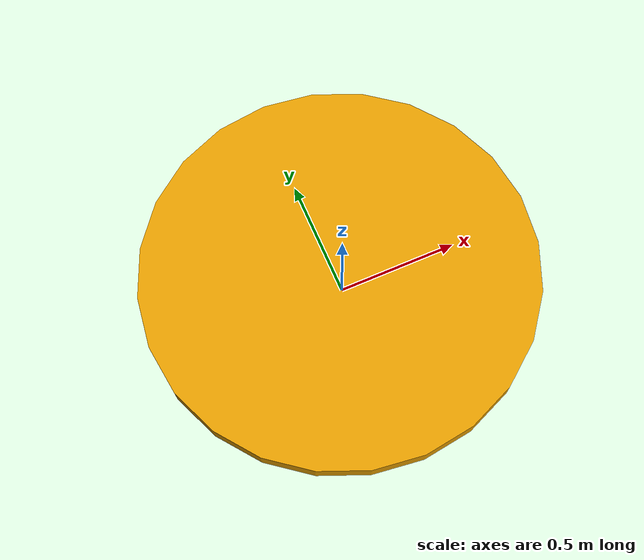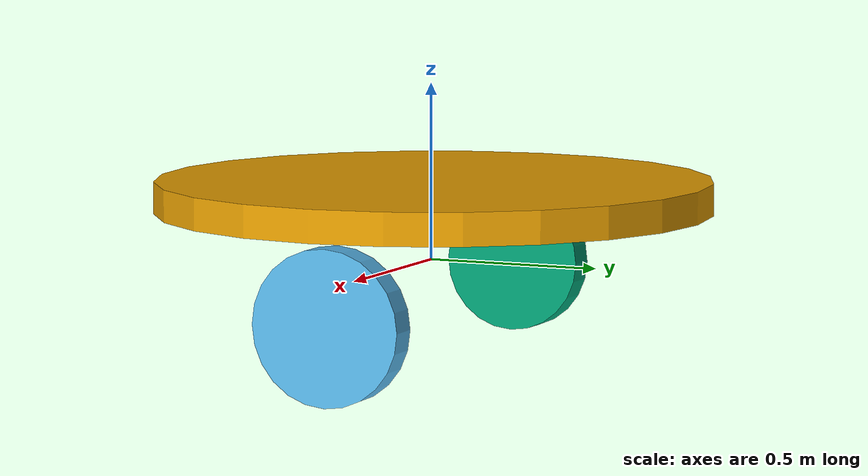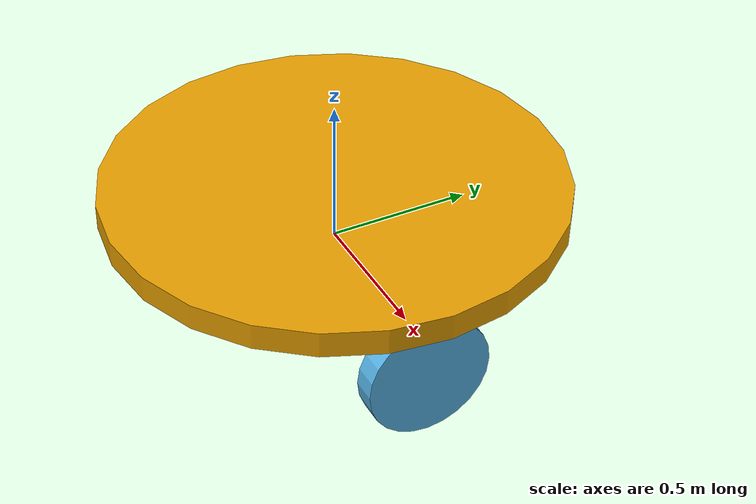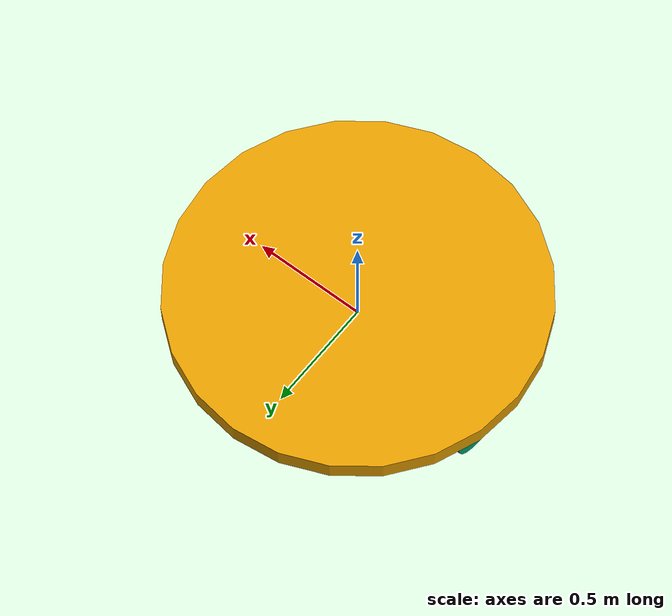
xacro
<?xml version="1.0" ?>
<robot name="bfl_2" xmlns:xacro="http://ros.org/wiki/xacro">

  <xacro:include filename="$(find dharmendra_model)/gazebo/bfl_2_materials.gazebo" />
  <xacro:include filename="$(find dharmendra_model)/gazebo/bfl_2_physics.gazebo" />
  <xacro:include filename="$(find dharmendra_model)/gazebo/bfl_2_plugins.gazebo" />

  <joint name="bfl_2__link_1_JOINT_0" type="revolute">
    <parent link="bfl_2__link_1"/>
    <child link="bfl_2__link_2"/>
    <origin xyz="0.63409 -0.00408 -0.1042" rpy="0      -1.56933  0"/>
    <axis xyz="0 0 1"/>
    <limit lower="-1.79769e+308" upper="1.79769e+308" effort="-1.0" velocity="-1.0"/>
  </joint>
  <joint name="bfl_2__link_1_JOINT_1" type="revolute">
    <parent link="bfl_2__link_1"/>
    <child link="bfl_2__link_3"/>
    <origin xyz="-0.62708 -0.00129 -0.07814" rpy="0      1.54813 0"/>
    <axis xyz="0 0 1"/>
    <limit lower="-1.79769e+308" upper="1.79769e+308" effort="-1.0" velocity="-1.0"/>
  </joint>
  <link name="bfl_2__link_1">
    <inertial>
      <mass value="0.225868"/>
      <origin xyz="0 0 0" rpy="0 0 0"/>
      <inertia ixx="0.0354084" ixy="0" ixz="0" iyy="0.0354084" iyz="0" izz="0.0705088"/>
    </inertial>
    <collision name="bfl_2__collision">
      <origin xyz="-0.00701  0.00537  0.18234" rpy="0 0 0"/>
      <geometry>
        <cylinder radius="0.79015" length="0.090441"/>
      </geometry>
    </collision>
    <visual name="bfl_2__visual">
      <origin xyz="-0.00701  0.00537  0.18234" rpy="0 0 0"/>
      <geometry>
        <cylinder radius="0.79015" length="0.0904415"/>
      </geometry>
    </visual>
  </link>
  <link name="bfl_2__link_2">
    <inertial>
      <mass value="0.0152714"/>
      <origin xyz="0 0 0" rpy="0 0 0"/>
      <inertia ixx="0.000183382" ixy="0" ixz="0" iyy="0.000183382" iyz="0" izz="0.000348998"/>
    </inertial>
    <collision name="bfl_2__collision">
      <origin xyz="0 0 0" rpy="0 0 0"/>
      <geometry>
        <cylinder radius="0.21379" length="0.083545"/>
      </geometry>
    </collision>
    <visual name="bfl_2__visual">
      <origin xyz="0 0 0" rpy="0 0 0"/>
      <geometry>
        <cylinder radius="0.21379" length="0.0835446"/>
      </geometry>
    </visual>
  </link>
  <link name="bfl_2__link_3">
    <inertial>
      <mass value="0.0159258"/>
      <origin xyz="0 0 0" rpy="0 0 0"/>
      <inertia ixx="0.000182628" ixy="0" ixz="0" iyy="0.000182628" iyz="0" izz="0.00034253"/>
    </inertial>
    <collision name="bfl_2__collision">
      <origin xyz="0 0 0" rpy="0 0 0"/>
      <geometry>
        <cylinder radius="0.207402" length="0.09253"/>
      </geometry>
    </collision>
    <visual name="bfl_2__visual">
      <origin xyz="0 0 0" rpy="0 0 0"/>
      <geometry>
        <cylinder radius="0.207402" length="0.0925299"/>
      </geometry>
    </visual>
  </link>

</robot>

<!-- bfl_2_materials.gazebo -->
<robot name="bfl_2" xmlns:xacro="http://ros.org/wiki/xacro">
  <xacro:property name="body_color" value="Gazebo/Red"/>
  <xacro:property name="body_color1" value="Gazebo/Blue"/>

   <!-- chassy -->
  <gazebo reference="link_1">
    <material>${body_color}</material>
  </gazebo>

  <!-- front_left_wheel -->
  <gazebo reference="link_2">
    <material>${body_color1}</material>
  </gazebo>

  <!-- front_right_wheel -->
  <gazebo reference="link_3">
    <material>${body_color1}</material>
  </gazebo>
</robot>
